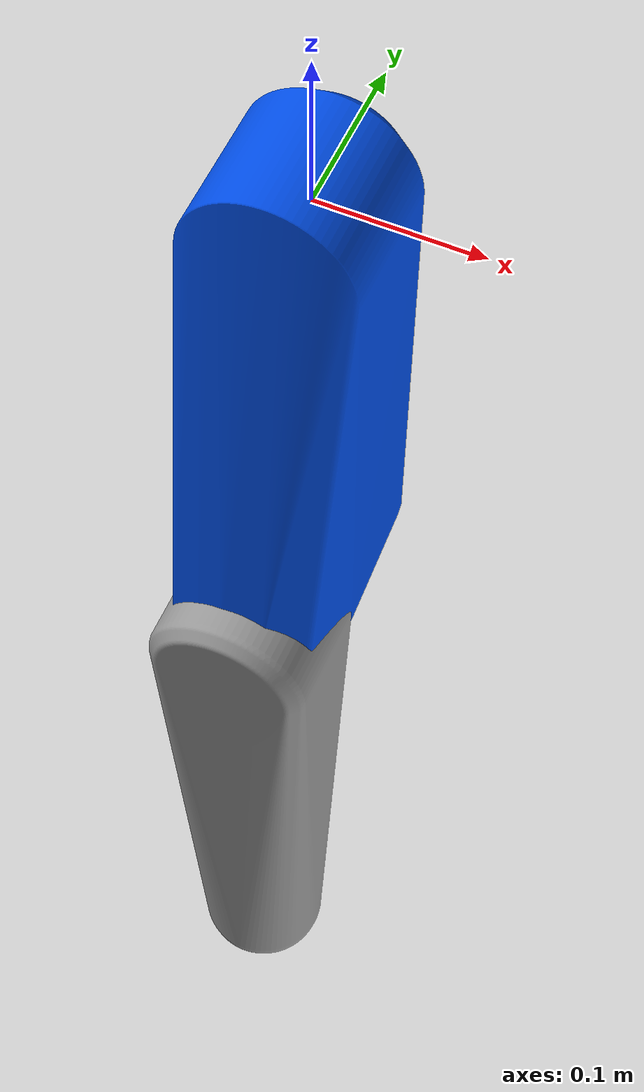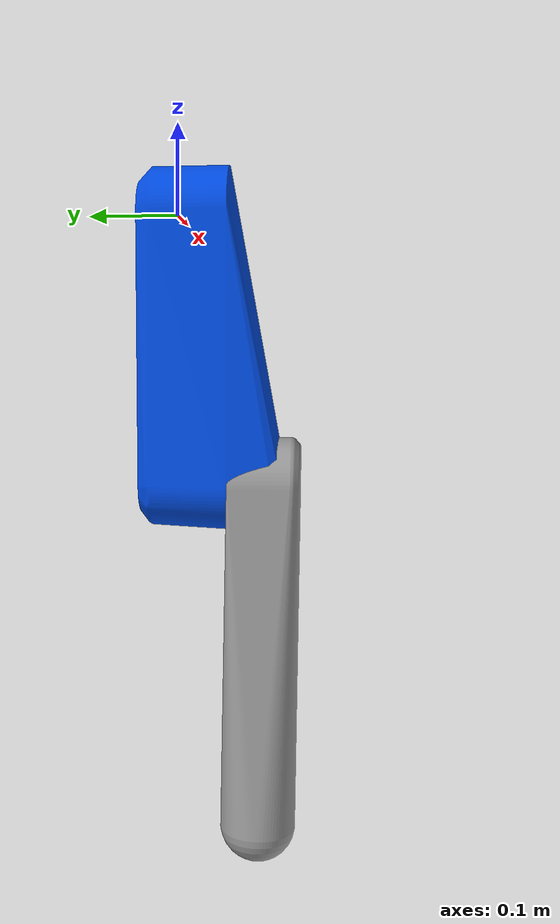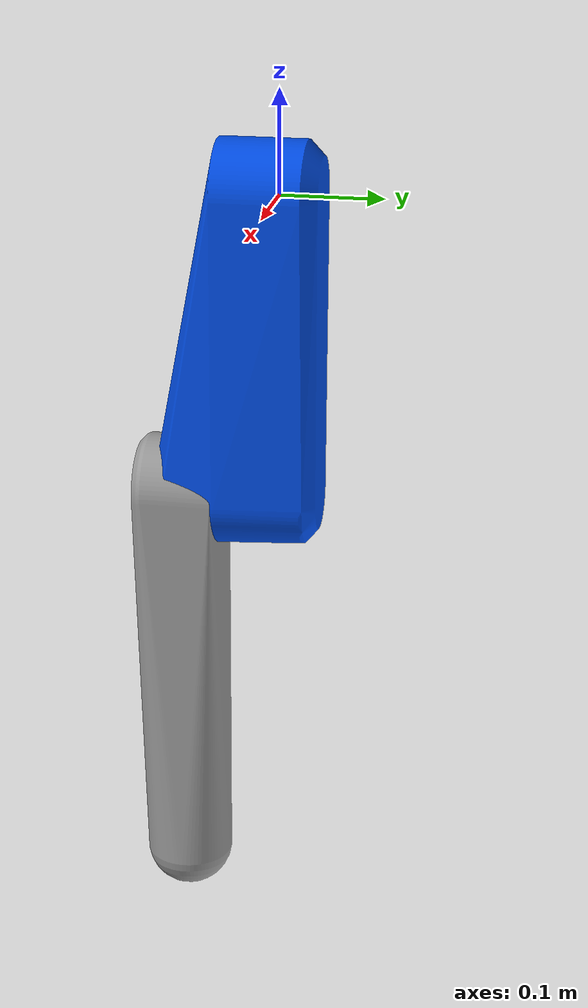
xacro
<?xml version="1.0" encoding="utf-8" ?>

<!--
    Leg base URDF (no external links). Variant of the URDF adapted for use with Pinocchio and for performing inertial parameter identification
-->

<robot name="awesome_leg" xmlns:xacro="http://www.ros.org/wiki/xacro">

    <xacro:include filename="$(find awesome_leg)/description/urdf/utils.urdf.xacro" />

    <xacro:include filename="$(find awesome_leg)/description/urdf/utils.urdf.xacro"/>
    <xacro:include filename="$(find awesome_leg)/description/urdf/awesome_leg.xbot.xacro"/>
    <xacro:include filename="$(find awesome_leg)/description/urdf/awesome_leg.urdf.xacro" />

    <xacro:awesome_leg id="1" base_link="none" add_ft_sensor= "false"/>

  </robot>

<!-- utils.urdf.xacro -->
<robot xmlns:xacro="http://ros.org/wiki/xacro">

<!-- scale -->
<xacro:property name="mmTom" value="0.001" />
<xacro:property name="dmTom" value="0.1" />
<xacro:property name="mm2Tom2" value="${0.001*0.001}" />
<xacro:property name="tonsToKg" value="1000.0" />
<xacro:property name="kgmm2_2_kgm2" value="${1e-06}" />

<xacro:property name="PI" value="3.14159265359" />
<xacro:property name="PI_2" value="1.57079632679" />
<xacro:property name="PI_4" value="0.7853981633974483" />
<xacro:property name="DEG2RAD" value="${PI/180.0}" />

<xacro:property name="sliding_guide_static_friction" value="0.0" />
<xacro:property name="sliding_guide_dyn_friction" value="0.0" />

<xacro:property name="payload_mass" value="${0.0}" />

<xacro:property name="camera_height" value="0.5" />
<xacro:property name="camera_depth" value="1.0" />

<xacro:property name="fts_sphere_radius" value="0.001" />
<xacro:property name="fts_delta" value="0.000" />
<xacro:property name="aux_mass_tip" value="0.01" />

<!-- color -->
<material name="darkblue">
    <color rgba="0.0 0.3 0.9 1"/>
</material>

<material name="dark">
    <color rgba="0.6 0.6 0.6 1"/>
</material>

<material name="sky_blue">
        <color rgba="0.13 0.44 0.70 1"/>
</material>
<material name="grey">
    <color rgba=" 0.6 0.6 0.6 1"/>
</material>
<material name="black">
    <color rgba="0.4 0.4 0.4 1"/>
</material>
<material name="brown">
    <color rgba="0.59 0.29 0.0 1"/>
</material>

<xacro:macro name="fake_inertial">
    <inertial>
        <mass value="0.1"/>
        <inertia ixx="0.0001" ixy="0" ixz="0" iyy="0.0001" iyz="0" izz="0.0001"/>
        <origin xyz="0 0 0"/>
    </inertial>
</xacro:macro>

</robot>

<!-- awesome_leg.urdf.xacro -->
<robot name="awesome_leg" xmlns:xacro="http://www.ros.org/wiki/xacro">

    <xacro:include filename="$(find awesome_leg)/description/urdf/awesome_leg.gazebo.xacro" />

    <xacro:macro name="awesome_leg" params="id base_link add_ft_sensor" >

        <xacro:awesome_leg_gazebo id="${id}" add_ft_sensor="${add_ft_sensor}"/>

        <xacro:unless value="${ base_link=='None' or base_link=='none'}">
            <!-- only add joint to base if argument is non-empty -->
            <joint name="hip_pitch_${id}" type="revolute">
                <parent link="${base_link}" />
                <child link="femur${id}" />
                <axis xyz="0 1 0"/>
                <origin xyz="0 ${214.6 * mmTom} 0" />
                <limit effort="112" lower="-2.4" upper="2.4" velocity="20.0"/>
            </joint>

        </xacro:unless>

        <link name="femur${id}">
            <inertial>
                <origin rpy="${0 * DEG2RAD} ${0 * DEG2RAD} ${0 * DEG2RAD}" xyz="${-1.7807105e-02 * mmTom} ${-3.4271947e+01 * mmTom} ${-2.2282064e+02 * mmTom}"/>
                <mass value="3.3712777"/>
                <inertia ixx="${4.6647423e+04 * kgmm2_2_kgm2}" iyy="${4.3720135e+04 * kgmm2_2_kgm2}" izz="${7.5794813e+04 * kgmm2_2_kgm2}"
                    ixy="${-1.2697640e+01 * kgmm2_2_kgm2}" ixz="${-3.2745810e+01 * kgmm2_2_kgm2}" iyz="${-6.3299091e+04 * kgmm2_2_kgm2}" />
            </inertial>
            <visual>
                <origin rpy="0.0 0.0 0.0" xyz="0.0 0.0 0.0"/>
                <geometry>
                    <mesh filename="package://awesome_leg/description/new_meshes/visual/femur.stl" scale="${dmTom} ${dmTom} ${dmTom}"/>
                </geometry>
                <material name="darkblue"/>
            </visual>
            <collision>
                <origin rpy="0.0 0.0 0.0" xyz="0.0 0.0 0.0"/>
                <geometry>
                    <mesh filename="package://awesome_leg/description/new_meshes/collision/femur.stl" scale="${dmTom} ${dmTom} ${dmTom}"/>
                </geometry>
            </collision>
        </link>

        <joint name="knee_pitch_${id}" type="revolute">
            <parent link="femur${id}"/>
            <child link="shin${id}"/>
            <origin rpy="0.0 0.0 0.0" xyz="0.0 ${-118.2 * mmTom} ${-300.0 * mmTom}"/>
            <axis xyz="0 -1 0"/>
            <limit effort="112" lower="-2.4" upper="2.4" velocity="20.0"/>
        </joint>

        <link name="shin${id}">
            <inertial>
                <origin rpy="${0.0 * DEG2RAD} ${0.0 * DEG2RAD} ${0 * DEG2RAD}" xyz="${9.2284672e-04 * mmTom} ${1.759883e+01 * mmTom} ${-1.8730054e+02 * mmTom}"/>
                <mass value="1.3106594"/>
                <inertia ixx="${4.0133965e+04 * kgmm2_2_kgm2}" iyy="${4.0269285e+04 * kgmm2_2_kgm2}" izz="${1.5274496e+03 * kgmm2_2_kgm2}"
                    ixy="${4.6219082e-02 * kgmm2_2_kgm2}" ixz="${-3.0432320e-01 * kgmm2_2_kgm2}" iyz="${1.3816329e+03 * kgmm2_2_kgm2}" />
            </inertial>
            <visual>
                <origin rpy="0.0 0.0 0.0" xyz="0.0 0.0 0.0"/>
                <geometry>
                    <mesh filename="package://awesome_leg/description/new_meshes/visual/shin.stl" scale="${dmTom} ${dmTom} ${dmTom}"/>
                </geometry>
                <material name="grey"/>
            </visual>

            <xacro:unless value="${ add_ft_sensor == True}">
                <collision>
                    <origin rpy="0.0 0.0 0.0" xyz="0.0 0.0 0.0"/>
                    <geometry>
                        <mesh filename="package://awesome_leg/description/new_meshes/collision/shin.stl" scale="${dmTom} ${dmTom} ${dmTom}"/>
                    </geometry>
                </collision>
            </xacro:unless>

        </link>

        <xacro:unless value="${ add_ft_sensor == True}">

            <joint name="tip_joint_${id}" type="fixed">
                <parent link="shin${id}"/>
                <child link="tip${id}"/>
                <origin xyz="0.0 ${23.3000 * mmTom} ${-451 * mmTom}"/>
            </joint>

            <link name="tip${id}"/>

        </xacro:unless>

        <xacro:if value="${ add_ft_sensor == True}">

            <joint name="tip_joint_${id}" type="prismatic">
                <parent link="shin${id}"/>
                <child link="tip${id}"/>
                <origin xyz="0.0 ${23.3000 * mmTom} ${-451 * mmTom}"/>
                <limit effort="0" lower="0.0" upper="0.0" velocity="0.0"/>
                <axis  xyz="0 0 1"/>
            </joint>
            <link name="tip${id}">
                    <origin xyz="0.0 0.0 0.0"/>
                    <inertial>
                        <origin xyz="0.0 0.0 0.0"/>
                        <mass value="${aux_mass_tip}"/> <!-- fake inertial value, otherwise Gazebo throws errors  -->
                        <inertia ixx="0" iyy="0" izz="0"
                            ixy="0" ixz="0" iyz="0" />
                    </inertial>
                    <collision>
                        <origin rpy="0.0 0.0 0.0" xyz="0.0 0.0 ${fts_sphere_radius - fts_delta}"/>
                        <geometry>
                            <sphere radius="${fts_sphere_radius}"/>
                        </geometry>
                        <max_contacts> 1 </max_contacts>
                    </collision>

            </link>

        </xacro:if>

    </xacro:macro>

</robot>
